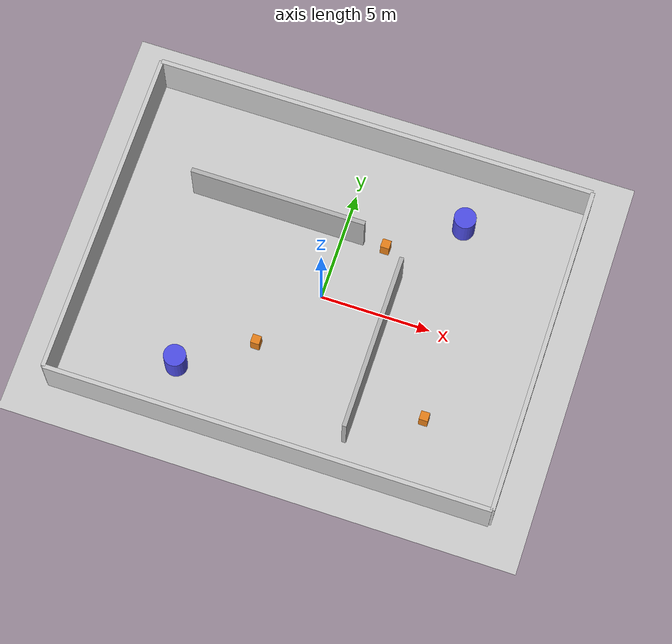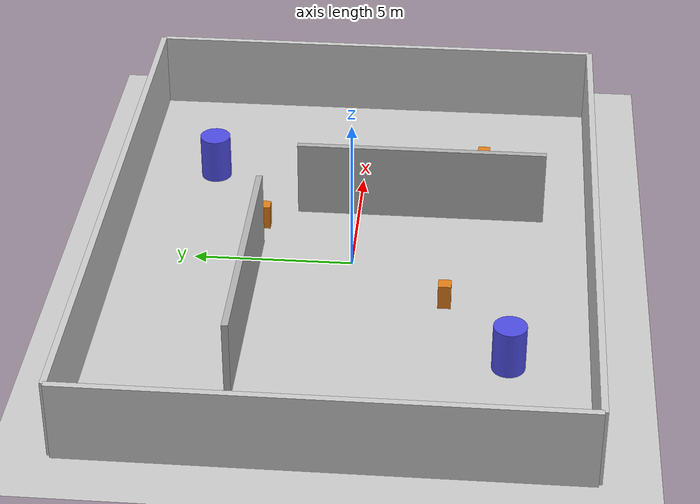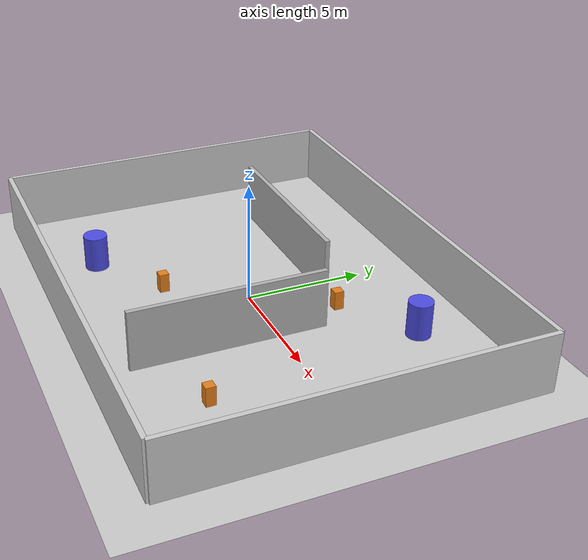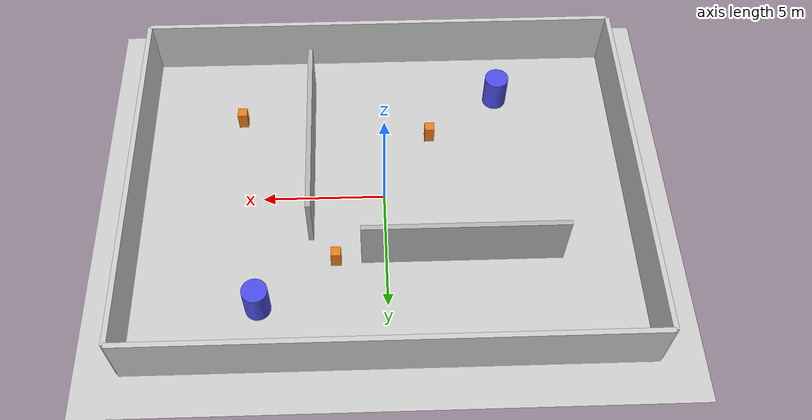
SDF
<?xml version="1.0"?>
<sdf version="1.7">
  <world name="office">
    <physics name="1ms" type="ode">
      <max_step_size>0.001</max_step_size>
      <real_time_factor>1.0</real_time_factor>
      <real_time_update_rate>1000</real_time_update_rate>
    </physics>

    <plugin filename="libgazebo_ros_init.so" name="gazebo_ros_init">
      <ros><namespace>/</namespace></ros>
    </plugin>

    <plugin filename="libgazebo_ros_state.so" name="gazebo_ros_state">
      <ros><namespace>/</namespace></ros>
      <update_rate>10.0</update_rate>
    </plugin>

    <scene>
      <ambient>0.4 0.4 0.4 1</ambient>
      <background>0.7 0.7 0.7 1</background>
      <shadows>1</shadows>
    </scene>

    <light type="directional" name="sun">
      <cast_shadows>true</cast_shadows>
      <pose>0 0 10 0 0 0</pose>
      <diffuse>0.8 0.8 0.8 1</diffuse>
      <specular>0.2 0.2 0.2 1</specular>
      <direction>-0.5 0.1 -0.9</direction>
    </light>

    <!-- Ground plane -->
    <model name="ground_plane">
      <static>true</static>
      <link name="link">
        <collision name="collision">
          <geometry><plane><normal>0 0 1</normal><size>100 100</size></plane></geometry>
          <surface><friction><ode><mu>0.6</mu><mu2>0.6</mu2></ode></friction></surface>
        </collision>
        <visual name="visual">
          <cast_shadows>false</cast_shadows>
          <geometry><plane><normal>0 0 1</normal><size>100 100</size></plane></geometry>
          <material><ambient>0.8 0.8 0.8 1</ambient><diffuse>0.8 0.8 0.8 1</diffuse></material>
        </visual>
      </link>
    </model>

    <!-- Outer walls (20m x 15m office) -->
    <model name="wall_north"><static>true</static><pose>0 7.5 1.25 0 0 0</pose>
      <link name="link"><collision name="collision"><geometry><box><size>20.0 0.2 2.5</size></box></geometry></collision>
        <visual name="visual"><geometry><box><size>20.0 0.2 2.5</size></box></geometry>
          <material><ambient>0.8 0.8 0.8 1</ambient><diffuse>0.8 0.8 0.8 1</diffuse></material></visual></link></model>

    <model name="wall_south"><static>true</static><pose>0 -7.5 1.25 0 0 0</pose>
      <link name="link"><collision name="collision"><geometry><box><size>20.0 0.2 2.5</size></box></geometry></collision>
        <visual name="visual"><geometry><box><size>20.0 0.2 2.5</size></box></geometry>
          <material><ambient>0.8 0.8 0.8 1</ambient><diffuse>0.8 0.8 0.8 1</diffuse></material></visual></link></model>

    <model name="wall_east"><static>true</static><pose>10 0 1.25 0 0 0</pose>
      <link name="link"><collision name="collision"><geometry><box><size>0.2 15.0 2.5</size></box></geometry></collision>
        <visual name="visual"><geometry><box><size>0.2 15.0 2.5</size></box></geometry>
          <material><ambient>0.8 0.8 0.8 1</ambient><diffuse>0.8 0.8 0.8 1</diffuse></material></visual></link></model>

    <model name="wall_west"><static>true</static><pose>-10 0 1.25 0 0 0</pose>
      <link name="link"><collision name="collision"><geometry><box><size>0.2 15.0 2.5</size></box></geometry></collision>
        <visual name="visual"><geometry><box><size>0.2 15.0 2.5</size></box></geometry>
          <material><ambient>0.8 0.8 0.8 1</ambient><diffuse>0.8 0.8 0.8 1</diffuse></material></visual></link></model>

    <!-- Interior partition walls -->
    <model name="partition_1"><static>true</static><pose>-3 3 1.25 0 0 0</pose>
      <link name="link"><collision name="collision"><geometry><box><size>8.0 0.2 2.5</size></box></geometry></collision>
        <visual name="visual"><geometry><box><size>8.0 0.2 2.5</size></box></geometry>
          <material><ambient>0.7 0.7 0.7 1</ambient><diffuse>0.7 0.7 0.7 1</diffuse></material></visual></link></model>

    <model name="partition_2"><static>true</static><pose>3 -2 1.25 0 0 0</pose>
      <link name="link"><collision name="collision"><geometry><box><size>0.2 8.0 2.5</size></box></geometry></collision>
        <visual name="visual"><geometry><box><size>0.2 8.0 2.5</size></box></geometry>
          <material><ambient>0.7 0.7 0.7 1</ambient><diffuse>0.7 0.7 0.7 1</diffuse></material></visual></link></model>

    <!-- Furniture: desks (cylinders) -->
    <model name="desk_1"><static>true</static><pose>5 5 0.75 0 0 0</pose>
      <link name="link"><collision name="collision"><geometry><cylinder><radius>0.5</radius><length>1.5</length></cylinder></geometry></collision>
        <visual name="visual"><geometry><cylinder><radius>0.5</radius><length>1.5</length></cylinder></geometry>
          <material><ambient>0.3 0.3 0.9 1</ambient><diffuse>0.3 0.3 0.9 1</diffuse></material></visual></link></model>

    <model name="desk_2"><static>true</static><pose>-5 -5 0.75 0 0 0</pose>
      <link name="link"><collision name="collision"><geometry><cylinder><radius>0.5</radius><length>1.5</length></cylinder></geometry></collision>
        <visual name="visual"><geometry><cylinder><radius>0.5</radius><length>1.5</length></cylinder></geometry>
          <material><ambient>0.3 0.3 0.9 1</ambient><diffuse>0.3 0.3 0.9 1</diffuse></material></visual></link></model>

    <!-- Chair obstacles (small boxes) -->
    <model name="chair_1"><static>true</static><pose>2 3 0.4 0 0 0</pose>
      <link name="link"><collision name="collision"><geometry><box><size>0.4 0.4 0.8</size></box></geometry></collision>
        <visual name="visual"><geometry><box><size>0.4 0.4 0.8</size></box></geometry>
          <material><ambient>0.9 0.5 0.1 1</ambient><diffuse>0.9 0.5 0.1 1</diffuse></material></visual></link></model>

    <model name="chair_2"><static>true</static><pose>-2 -3 0.4 0 0 0</pose>
      <link name="link"><collision name="collision"><geometry><box><size>0.4 0.4 0.8</size></box></geometry></collision>
        <visual name="visual"><geometry><box><size>0.4 0.4 0.8</size></box></geometry>
          <material><ambient>0.9 0.5 0.1 1</ambient><diffuse>0.9 0.5 0.1 1</diffuse></material></visual></link></model>

    <model name="chair_3"><static>true</static><pose>6 -4 0.4 0 0 0</pose>
      <link name="link"><collision name="collision"><geometry><box><size>0.4 0.4 0.8</size></box></geometry></collision>
        <visual name="visual"><geometry><box><size>0.4 0.4 0.8</size></box></geometry>
          <material><ambient>0.9 0.5 0.1 1</ambient><diffuse>0.9 0.5 0.1 1</diffuse></material></visual></link></model>

  </world>
</sdf>
